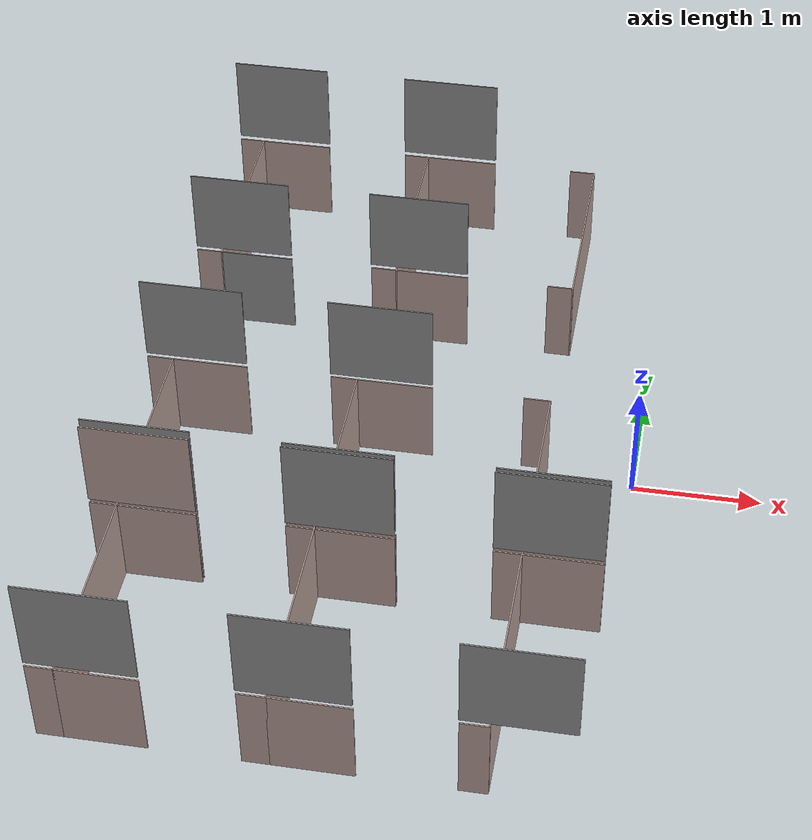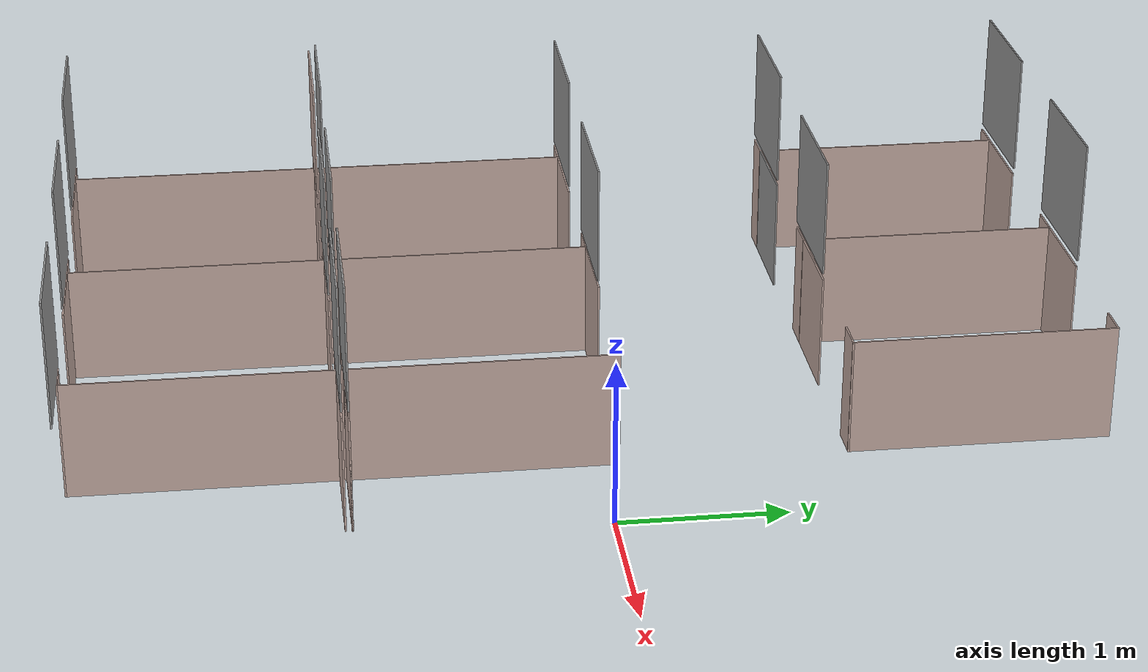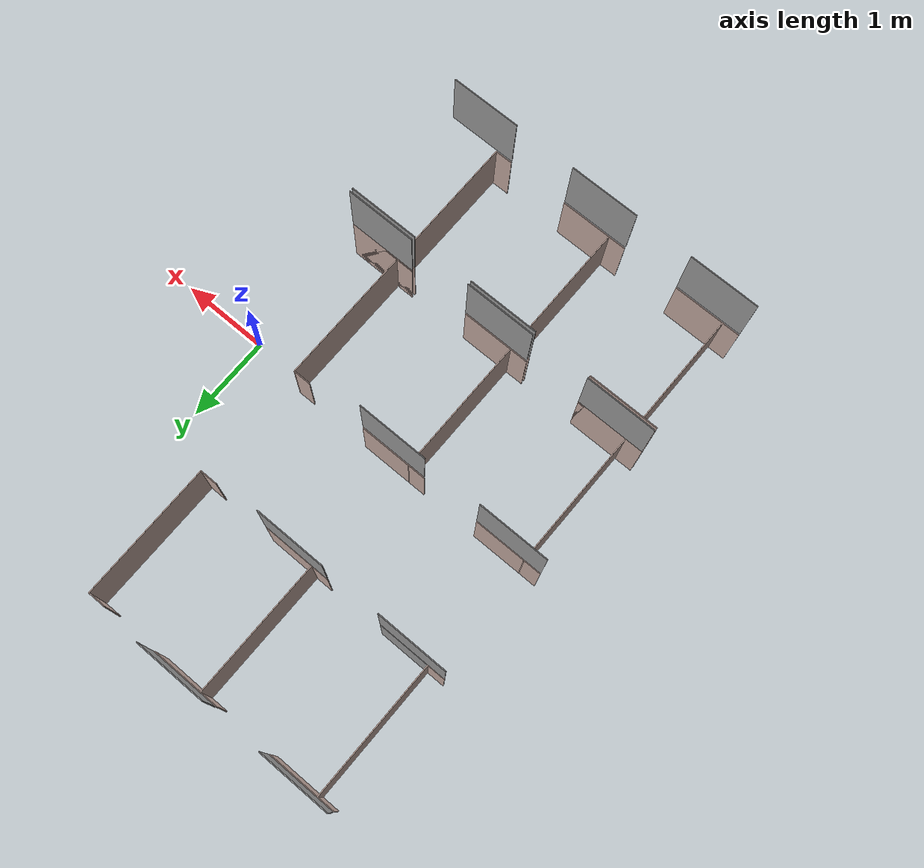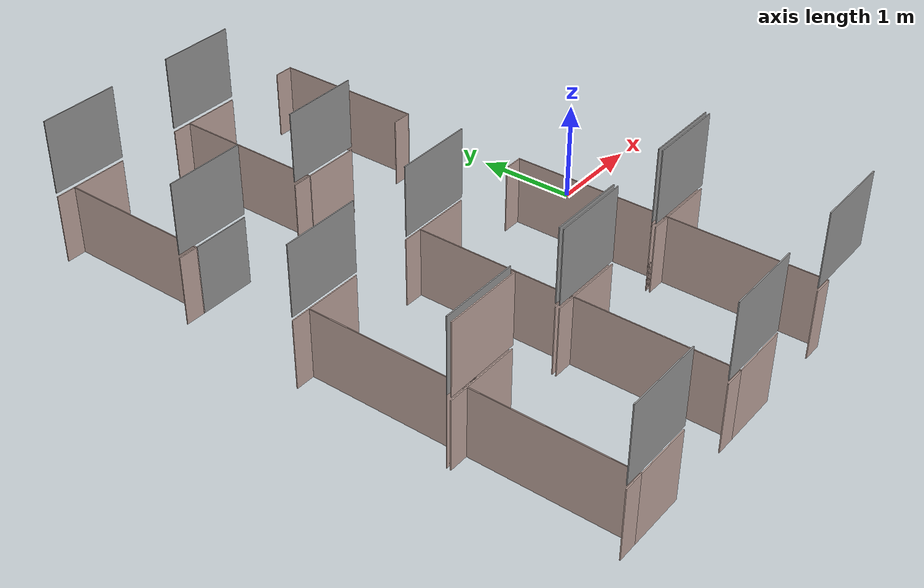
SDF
<sdf version="1.6">
 <model name="change_class3">
  <pose>-0.18406 0.008075 0 0 -0 0</pose>
  <link name="Wall_138">
   <collision name="Wall_138_Collision">
    <geometry><box><size>0.593 0.01 0.715</size></box></geometry>
    <pose>0 0 0.3575 0 -0 0</pose>
   </collision>
   <visual name="Wall_138_Visual">
    <pose>0 0 0.3575 0 -0 0</pose>
    <geometry><box><size>0.593 0.01 0.715</size></box></geometry>
    <material>
     <script><uri>file://media/materials/scripts/gazebo.material</uri><name>Gazebo/Grey</name></script>
     <ambient>0.760784 0.662745 0.627451 1</ambient>
    </material>
   </visual>
   <pose>-3.10444 3.04292 0 0 -0 0</pose>
  </link>
  <link name="Wall_140">
   <collision name="Wall_140_Collision">
    <geometry><box><size>0.598 0.01 0.715</size></box></geometry>
    <pose>0 0 0.3575 0 -0 0</pose>
   </collision>
   <visual name="Wall_140_Visual">
    <pose>0 0 0.3575 0 -0 0</pose>
    <geometry><box><size>0.598 0.01 0.715</size></box></geometry>
    <material>
     <script><uri>file://media/materials/scripts/gazebo.material</uri><name>Gazebo/Grey</name></script>
     <ambient>0.760784 0.662745 0.627451 1</ambient>
    </material>
   </visual>
   <pose>-1.63894 3.04292 0 0 -0 0</pose>
  </link>
  <link name="Wall_155">
   <collision name="Wall_155_Collision">
    <geometry><box><size>0.798 0.01 0.715</size></box></geometry>
    <pose>0 0 0.3575 0 -0 0</pose>
   </collision>
   <visual name="Wall_155_Visual">
    <pose>0 0 0.3575 0 -0 0</pose>
    <geometry><box><size>0.798 0.01 0.715</size></box></geometry>
    <material>
     <script><uri>file://media/materials/scripts/gazebo.material</uri><name>Gazebo/Grey</name></script>
     <ambient>1 1 1 1</ambient>
    </material>
   </visual>
   <pose>-3.20194 1.46893 0.751 0 -0 0</pose>
  </link>
  <link name="Wall_156">
   <collision name="Wall_156_Collision">
    <geometry><box><size>0.798 0.01 0.715</size></box></geometry>
    <pose>0 0 0.3575 0 -0 0</pose>
   </collision>
   <visual name="Wall_156_Visual">
    <pose>0 0 0.3575 0 -0 0</pose>
    <geometry><box><size>0.798 0.01 0.715</size></box></geometry>
    <material>
     <script><uri>file://media/materials/scripts/gazebo.material</uri><name>Gazebo/Grey</name></script>
     <ambient>1 1 1 1</ambient>
    </material>
   </visual>
   <pose>-1.74294 1.46893 0.751 0 -0 0</pose>
  </link>
  <link name="Wall_16">
   <collision name="Wall_16_Collision">
    <geometry><box><size>0.598 0.01 0.715</size></box></geometry>
    <pose>0 0 0.3575 0 -0 0</pose>
   </collision>
   <visual name="Wall_16_Visual">
    <pose>0 0 0.3575 0 -0 0</pose>
    <geometry><box><size>0.598 0.01 0.715</size></box></geometry>
    <material>
     <script><uri>file://media/materials/scripts/gazebo.material</uri><name>Gazebo/Grey</name></script>
     <ambient>0.760784 0.662745 0.627451 1</ambient>
    </material>
   </visual>
   <pose>-3.16194 0.108925 0 0 -0 0</pose>
  </link>
  <link name="Wall_160">
   <collision name="Wall_160_Collision">
    <geometry><box><size>0.798 0.01 0.715</size></box></geometry>
    <pose>0 0 0.3575 0 -0 0</pose>
   </collision>
   <visual name="Wall_160_Visual">
    <pose>0 0 0.3575 0 -0 0</pose>
    <geometry><box><size>0.798 0.01 0.715</size></box></geometry>
    <material>
     <script><uri>file://media/materials/scripts/gazebo.material</uri><name>Gazebo/Grey</name></script>
     <ambient>1 1 1 1</ambient>
    </material>
   </visual>
   <pose>-3.26194 0.108925 0.751 0 -0 0</pose>
  </link>
  <link name="Wall_161">
   <collision name="Wall_161_Collision">
    <geometry><box><size>0.797 0.01 0.715</size></box></geometry>
    <pose>0 0 0.3575 0 -0 0</pose>
   </collision>
   <visual name="Wall_161_Visual">
    <pose>0 0 0.3575 0 -0 0</pose>
    <geometry><box><size>0.797 0.01 0.715</size></box></geometry>
    <material>
     <script><uri>file://media/materials/scripts/gazebo.material</uri><name>Gazebo/Grey</name></script>
     <ambient>1 1 1 1</ambient>
    </material>
   </visual>
   <pose>-1.80244 0.104925 0.751 0 -0 0</pose>
  </link>
  <link name="Wall_164">
   <collision name="Wall_164_Collision">
    <geometry><box><size>0.798 0.01 0.751</size></box></geometry>
    <pose>0 0 0.3755 0 -0 0</pose>
   </collision>
   <visual name="Wall_164_Visual">
    <pose>0 0 0.3755 0 -0 0</pose>
    <geometry><box><size>0.798 0.01 0.751</size></box></geometry>
    <material>
     <script><uri>file://media/materials/scripts/gazebo.material</uri><name>Gazebo/Grey</name></script>
     <ambient>1 1 1 1</ambient>
    </material>
   </visual>
   <pose>-3.26194 -1.47107 0.751 0 -0 0</pose>
  </link>
  <link name="Wall_165">
   <collision name="Wall_165_Collision">
    <geometry><box><size>0.798 0.01 0.751</size></box></geometry>
    <pose>0 0 0.3755 0 -0 0</pose>
   </collision>
   <visual name="Wall_165_Visual">
    <pose>0 0 0.3755 0 -0 0</pose>
    <geometry><box><size>0.798 0.01 0.751</size></box></geometry>
    <material>
     <script><uri>file://media/materials/scripts/gazebo.material</uri><name>Gazebo/Grey</name></script>
     <ambient>1 1 1 1</ambient>
    </material>
   </visual>
   <pose>-1.80594 -1.47107 0.751 0 -0 0</pose>
  </link>
  <link name="Wall_166">
   <collision name="Wall_166_Collision">
    <geometry><box><size>0.798 0.01 0.751</size></box></geometry>
    <pose>0 0 0.3755 0 -0 0</pose>
   </collision>
   <visual name="Wall_166_Visual">
    <pose>0 0 0.3755 0 -0 0</pose>
    <geometry><box><size>0.798 0.01 0.751</size></box></geometry>
    <material>
     <script><uri>file://media/materials/scripts/gazebo.material</uri><name>Gazebo/Grey</name></script>
     <ambient>1 1 1 1</ambient>
    </material>
   </visual>
   <pose>-0.30194 -1.47107 0.751 0 -0 0</pose>
  </link>
  <link name="Wall_175">
   <collision name="Wall_175_Collision">
    <geometry><box><size>0.798 0.01 0.751</size></box></geometry>
    <pose>0 0 0.3755 0 -0 0</pose>
   </collision>
   <visual name="Wall_175_Visual">
    <pose>0 0 0.3755 0 -0 0</pose>
    <geometry><box><size>0.798 0.01 0.751</size></box></geometry>
    <material>
     <script><uri>file://media/materials/scripts/gazebo.material</uri><name>Gazebo/Grey</name></script>
     <ambient>1 1 1 1</ambient>
    </material>
   </visual>
   <pose>-0.30194 -1.47107 0.751 0 -0 0</pose>
  </link>
  <link name="Wall_176">
   <collision name="Wall_176_Collision">
    <geometry><box><size>0.798 0.01 0.751</size></box></geometry>
    <pose>0 0 0.3755 0 -0 0</pose>
   </collision>
   <visual name="Wall_176_Visual">
    <pose>0 0 0.3755 0 -0 0</pose>
    <geometry><box><size>0.798 0.01 0.751</size></box></geometry>
    <material>
     <script><uri>file://media/materials/scripts/gazebo.material</uri><name>Gazebo/Grey</name></script>
     <ambient>1 1 1 1</ambient>
    </material>
   </visual>
   <pose>-0.30194 -1.51107 0.751 0 -0 0</pose>
  </link>
  <link name="Wall_177">
   <collision name="Wall_177_Collision">
    <geometry><box><size>0.798 0.01 0.751</size></box></geometry>
    <pose>0 0 0.3755 0 -0 0</pose>
   </collision>
   <visual name="Wall_177_Visual">
    <pose>0 0 0.3755 0 -0 0</pose>
    <geometry><box><size>0.798 0.01 0.751</size></box></geometry>
    <material>
     <script><uri>file://media/materials/scripts/gazebo.material</uri><name>Gazebo/Grey</name></script>
     <ambient>1 1 1 1</ambient>
    </material>
   </visual>
   <pose>-1.80594 -1.51107 0.751 0 -0 0</pose>
  </link>
  <link name="Wall_178">
   <collision name="Wall_178_Collision">
    <geometry><box><size>0.798 0.01 0.751</size></box></geometry>
    <pose>0 0 0.3755 0 -0 0</pose>
   </collision>
   <visual name="Wall_178_Visual">
    <pose>0 0 0.3755 0 -0 0</pose>
    <geometry><box><size>0.798 0.01 0.751</size></box></geometry>
    <material>
     <script><uri>file://media/materials/scripts/gazebo.material</uri><name>Gazebo/Grey</name></script>
     <ambient>1 1 1 1</ambient>
    </material>
   </visual>
   <pose>-3.26194 -1.47107 0.751 0 -0 0</pose>
  </link>
  <link name="Wall_179">
   <collision name="Wall_179_Collision">
    <geometry><box><size>0.798 0.01 0.715</size></box></geometry>
    <pose>0 0 0.3575 0 -0 0</pose>
   </collision>
   <visual name="Wall_179_Visual">
    <pose>0 0 0.3575 0 -0 0</pose>
    <geometry><box><size>0.798 0.01 0.715</size></box></geometry>
    <material>
     <script><uri>file://media/materials/scripts/gazebo.material</uri><name>Gazebo/Grey</name></script>
     <ambient>0.760784 0.662745 0.627451 1</ambient>
    </material>
   </visual>
   <pose>-3.26194 -1.51307 0.751 0 -0 0</pose>
  </link>
  <link name="Wall_18">
   <collision name="Wall_18_Collision">
    <geometry><box><size>0.598 0.01 0.715</size></box></geometry>
    <pose>0 0 0.3575 0 -0 0</pose>
   </collision>
   <visual name="Wall_18_Visual">
    <pose>0 0 0.3575 0 -0 0</pose>
    <geometry><box><size>0.598 0.01 0.715</size></box></geometry>
    <material>
     <script><uri>file://media/materials/scripts/gazebo.material</uri><name>Gazebo/Grey</name></script>
     <ambient>0.760784 0.662745 0.627451 1</ambient>
    </material>
   </visual>
   <pose>-1.70194 0.108925 0 0 -0 0</pose>
  </link>
  <link name="Wall_180">
   <collision name="Wall_180_Collision">
    <geometry><box><size>0.798 0.01 0.751</size></box></geometry>
    <pose>0 0 0.3755 0 -0 0</pose>
   </collision>
   <visual name="Wall_180_Visual">
    <pose>0 0 0.3755 0 -0 0</pose>
    <geometry><box><size>0.798 0.01 0.751</size></box></geometry>
    <material>
     <script><uri>file://media/materials/scripts/gazebo.material</uri><name>Gazebo/Grey</name></script>
     <ambient>1 1 1 1</ambient>
    </material>
   </visual>
   <pose>-3.26194 -3.07508 0.751 0 -0 0</pose>
  </link>
  <link name="Wall_181">
   <collision name="Wall_181_Collision">
    <geometry><box><size>0.798 0.01 0.751</size></box></geometry>
    <pose>0 0 0.3755 0 -0 0</pose>
   </collision>
   <visual name="Wall_181_Visual">
    <pose>0 0 0.3755 0 -0 0</pose>
    <geometry><box><size>0.798 0.01 0.751</size></box></geometry>
    <material>
     <script><uri>file://media/materials/scripts/gazebo.material</uri><name>Gazebo/Grey</name></script>
     <ambient>1 1 1 1</ambient>
    </material>
   </visual>
   <pose>-1.80594 -3.07508 0.751 0 -0 0</pose>
  </link>
  <link name="Wall_182">
   <collision name="Wall_182_Collision">
    <geometry><box><size>0.798 0.01 0.751</size></box></geometry>
    <pose>0 0 0.3755 0 -0 0</pose>
   </collision>
   <visual name="Wall_182_Visual">
    <pose>0 0 0.3755 0 -0 0</pose>
    <geometry><box><size>0.798 0.01 0.751</size></box></geometry>
    <material>
     <script><uri>file://media/materials/scripts/gazebo.material</uri><name>Gazebo/Grey</name></script>
     <ambient>1 1 1 1</ambient>
    </material>
   </visual>
   <pose>-0.30194 -3.07508 0.751 0 -0 0</pose>
  </link>
  <link name="Wall_185">
   <collision name="Wall_185_Collision">
    <geometry><box><size>0.798 0.01 0.751</size></box></geometry>
    <pose>0 0 0.3755 0 -0 0</pose>
   </collision>
   <visual name="Wall_185_Visual">
    <pose>0 0 0.3755 0 -0 0</pose>
    <geometry><box><size>0.798 0.01 0.751</size></box></geometry>
    <material>
     <script><uri>file://media/materials/scripts/gazebo.material</uri><name>Gazebo/Grey</name></script>
     <ambient>1 1 1 1</ambient>
    </material>
   </visual>
   <pose>-3.20194 3.04893 0.751 0 -0 0</pose>
  </link>
  <link name="Wall_186">
   <collision name="Wall_186_Collision">
    <geometry><box><size>0.798 0.01 0.751</size></box></geometry>
    <pose>0 0 0.3755 0 -0 0</pose>
   </collision>
   <visual name="Wall_186_Visual">
    <pose>0 0 0.3755 0 -0 0</pose>
    <geometry><box><size>0.798 0.01 0.751</size></box></geometry>
    <material>
     <script><uri>file://media/materials/scripts/gazebo.material</uri><name>Gazebo/Grey</name></script>
     <ambient>1 1 1 1</ambient>
    </material>
   </visual>
   <pose>-1.73894 3.04893 0.751 0 -0 0</pose>
  </link>
  <link name="Wall_193">
   <collision name="Wall_193_Collision">
    <geometry><box><size>1.584 0.01 0.715</size></box></geometry>
    <pose>0 0 0.3575 0 -0 0</pose>
   </collision>
   <visual name="Wall_193_Visual">
    <pose>0 0 0.3575 0 -0 0</pose>
    <geometry><box><size>1.584 0.01 0.715</size></box></geometry>
    <material>
     <script><uri>file://media/materials/scripts/gazebo.material</uri><name>Gazebo/Grey</name></script>
     <ambient>0.760784 0.662745 0.627451 1</ambient>
    </material>
   </visual>
   <pose>-1.93294 2.25592 0 0 0 -1.5708</pose>
  </link>
  <link name="Wall_195">
   <collision name="Wall_195_Collision">
    <geometry><box><size>1.584 0.01 0.715</size></box></geometry>
    <pose>0 0 0.3575 0 -0 0</pose>
   </collision>
   <visual name="Wall_195_Visual">
    <pose>0 0 0.3575 0 -0 0</pose>
    <geometry><box><size>1.584 0.01 0.715</size></box></geometry>
    <material>
     <script><uri>file://media/materials/scripts/gazebo.material</uri><name>Gazebo/Grey</name></script>
     <ambient>0.760784 0.662745 0.627451 1</ambient>
    </material>
   </visual>
   <pose>-0.48194 2.25592 0 0 0 -1.5708</pose>
  </link>
  <link name="Wall_203">
   <collision name="Wall_203_Collision">
    <geometry><box><size>3.194 0.01 0.715</size></box></geometry>
    <pose>0 0 0.3575 0 -0 0</pose>
   </collision>
   <visual name="Wall_203_Visual">
    <pose>0 0 0.3575 0 -0 0</pose>
    <geometry><box><size>3.194 0.01 0.715</size></box></geometry>
    <material>
     <script><uri>file://media/materials/scripts/gazebo.material</uri><name>Gazebo/Grey</name></script>
     <ambient>0.760784 0.662745 0.627451 1</ambient>
    </material>
   </visual>
   <pose>-3.45594 -1.48307 0 0 0 -1.5708</pose>
  </link>
  <link name="Wall_205">
   <collision name="Wall_205_Collision">
    <geometry><box><size>3.194 0.01 0.715</size></box></geometry>
    <pose>0 0 0.3575 0 -0 0</pose>
   </collision>
   <visual name="Wall_205_Visual">
    <pose>0 0 0.3575 0 -0 0</pose>
    <geometry><box><size>3.194 0.01 0.715</size></box></geometry>
    <material>
     <script><uri>file://media/materials/scripts/gazebo.material</uri><name>Gazebo/Grey</name></script>
     <ambient>0.760784 0.662745 0.627451 1</ambient>
    </material>
   </visual>
   <pose>-1.99594 -1.48307 0 0 0 -1.5708</pose>
  </link>
  <link name="Wall_207">
   <collision name="Wall_207_Collision">
    <geometry><box><size>3.194 0.01 0.715</size></box></geometry>
    <pose>0 0 0.3575 0 -0 0</pose>
   </collision>
   <visual name="Wall_207_Visual">
    <pose>0 0 0.3575 0 -0 0</pose>
    <geometry><box><size>3.194 0.01 0.715</size></box></geometry>
    <material>
     <script><uri>file://media/materials/scripts/gazebo.material</uri><name>Gazebo/Grey</name></script>
     <ambient>0.760784 0.662745 0.627451 1</ambient>
    </material>
   </visual>
   <pose>-0.49394 -1.48307 0 0 0 -1.5708</pose>
  </link>
  <link name="Wall_214">
   <collision name="Wall_214_Collision">
    <geometry><box><size>0.01 0.01 0.715</size></box></geometry>
    <pose>0 0 0.3575 0 -0 0</pose>
   </collision>
   <visual name="Wall_214_Visual">
    <pose>0 0 0.3575 0 -0 0</pose>
    <geometry><box><size>0.01 0.01 0.715</size></box></geometry>
    <material>
     <script><uri>file://media/materials/scripts/gazebo.material</uri><name>Gazebo/Grey</name></script>
     <ambient>0.760784 0.662745 0.627451 1</ambient>
    </material>
   </visual>
   <pose>-3.39594 1.46893 0 0 -0 0</pose>
  </link>
  <link name="Wall_216">
   <collision name="Wall_216_Collision">
    <geometry><box><size>0.01 0.01 0.715</size></box></geometry>
    <pose>0 0 0.3575 0 -0 0</pose>
   </collision>
   <visual name="Wall_216_Visual">
    <pose>0 0 0.3575 0 -0 0</pose>
    <geometry><box><size>0.01 0.01 0.715</size></box></geometry>
    <material>
     <script><uri>file://media/materials/scripts/gazebo.material</uri><name>Gazebo/Grey</name></script>
     <ambient>0.760784 0.662745 0.627451 1</ambient>
    </material>
   </visual>
   <pose>-3.39594 1.46893 0 0 -0 0</pose>
  </link>
  <link name="Wall_218">
   <collision name="Wall_218_Collision">
    <geometry><box><size>0.01 0.01 0.715</size></box></geometry>
    <pose>0 0 0.3575 0 -0 0</pose>
   </collision>
   <visual name="Wall_218_Visual">
    <pose>0 0 0.3575 0 -0 0</pose>
    <geometry><box><size>0.01 0.01 0.715</size></box></geometry>
    <material>
     <script><uri>file://media/materials/scripts/gazebo.material</uri><name>Gazebo/Grey</name></script>
     <ambient>1 1 1 1</ambient>
    </material>
   </visual>
   <pose>-3.39594 3.04292 0 0 -0 0</pose>
  </link>
  <link name="Wall_222">
   <collision name="Wall_222_Collision">
    <geometry><box><size>1.584 0.01 0.715</size></box></geometry>
    <pose>0 0 0.3575 0 -0 0</pose>
   </collision>
   <visual name="Wall_222_Visual">
    <pose>0 0 0.3575 0 -0 0</pose>
    <geometry><box><size>1.584 0.01 0.715</size></box></geometry>
    <material>
     <script><uri>file://media/materials/scripts/gazebo.material</uri><name>Gazebo/Grey</name></script>
     <ambient>0.760784 0.662745 0.627451 1</ambient>
    </material>
   </visual>
   <pose>-3.39594 2.25592 0 0 -0 1.5708</pose>
  </link>
  <link name="Wall_224">
   <collision name="Wall_224_Collision">
    <geometry><box><size>0.21 0.01 0.715</size></box></geometry>
    <pose>0 0 0.3575 0 -0 0</pose>
   </collision>
   <visual name="Wall_224_Visual">
    <pose>0 0 0.3575 0 -0 0</pose>
    <geometry><box><size>0.21 0.01 0.715</size></box></geometry>
    <material>
     <script><uri>file://media/materials/scripts/gazebo.material</uri><name>Gazebo/Grey</name></script>
     <ambient>0.760784 0.662745 0.627451 1</ambient>
    </material>
   </visual>
   <pose>-3.49594 3.04292 0 0 -0 0</pose>
  </link>
  <link name="Wall_226">
   <collision name="Wall_226_Collision">
    <geometry><box><size>0.21 0.01 0.715</size></box></geometry>
    <pose>0 0 0.3575 0 -0 0</pose>
   </collision>
   <visual name="Wall_226_Visual">
    <pose>0 0 0.3575 0 -0 0</pose>
    <geometry><box><size>0.21 0.01 0.715</size></box></geometry>
    <material>
     <script><uri>file://media/materials/scripts/gazebo.material</uri><name>Gazebo/Grey</name></script>
     <ambient>0.760784 0.662745 0.627451 1</ambient>
    </material>
   </visual>
   <pose>-3.49594 1.46893 0 0 -0 0</pose>
  </link>
  <link name="Wall_228">
   <collision name="Wall_228_Collision">
    <geometry><box><size>0.21 0.01 0.715</size></box></geometry>
    <pose>0 0 0.3575 0 -0 0</pose>
   </collision>
   <visual name="Wall_228_Visual">
    <pose>0 0 0.3575 0 -0 0</pose>
    <geometry><box><size>0.21 0.01 0.715</size></box></geometry>
    <material>
     <script><uri>file://media/materials/scripts/gazebo.material</uri><name>Gazebo/Grey</name></script>
     <ambient>0.760784 0.662745 0.627451 1</ambient>
    </material>
   </visual>
   <pose>-2.03294 3.04292 0 0 -0 0</pose>
  </link>
  <link name="Wall_230">
   <collision name="Wall_230_Collision">
    <geometry><box><size>0.21 0.01 0.715</size></box></geometry>
    <pose>0 0 0.3575 0 -0 0</pose>
   </collision>
   <visual name="Wall_230_Visual">
    <pose>0 0 0.3575 0 -0 0</pose>
    <geometry><box><size>0.21 0.01 0.715</size></box></geometry>
    <material>
     <script><uri>file://media/materials/scripts/gazebo.material</uri><name>Gazebo/Grey</name></script>
     <ambient>0.760784 0.662745 0.627451 1</ambient>
    </material>
   </visual>
   <pose>-2.03294 1.46893 0 0 -0 0</pose>
  </link>
  <link name="Wall_232">
   <collision name="Wall_232_Collision">
    <geometry><box><size>0.21 0.01 0.715</size></box></geometry>
    <pose>0 0 0.3575 0 -0 0</pose>
   </collision>
   <visual name="Wall_232_Visual">
    <pose>0 0 0.3575 0 -0 0</pose>
    <geometry><box><size>0.21 0.01 0.715</size></box></geometry>
    <material>
     <script><uri>file://media/materials/scripts/gazebo.material</uri><name>Gazebo/Grey</name></script>
     <ambient>0.760784 0.662745 0.627451 1</ambient>
    </material>
   </visual>
   <pose>-0.58194 1.46893 0 0 -0 0</pose>
  </link>
  <link name="Wall_234">
   <collision name="Wall_234_Collision">
    <geometry><box><size>0.21 0.01 0.715</size></box></geometry>
    <pose>0 0 0.3575 0 -0 0</pose>
   </collision>
   <visual name="Wall_234_Visual">
    <pose>0 0 0.3575 0 -0 0</pose>
    <geometry><box><size>0.21 0.01 0.715</size></box></geometry>
    <material>
     <script><uri>file://media/materials/scripts/gazebo.material</uri><name>Gazebo/Grey</name></script>
     <ambient>0.760784 0.662745 0.627451 1</ambient>
    </material>
   </visual>
   <pose>-0.58194 3.04292 0 0 -0 0</pose>
  </link>
  <link name="Wall_244">
   <collision name="Wall_244_Collision">
    <geometry><box><size>0.21 0.01 0.715</size></box></geometry>
    <pose>0 0 0.3575 0 -0 0</pose>
   </collision>
   <visual name="Wall_244_Visual">
    <pose>0 0 0.3575 0 -0 0</pose>
    <geometry><box><size>0.21 0.01 0.715</size></box></geometry>
    <material>
     <script><uri>file://media/materials/scripts/gazebo.material</uri><name>Gazebo/Grey</name></script>
     <ambient>0.760784 0.662745 0.627451 1</ambient>
    </material>
   </visual>
   <pose>-3.55594 0.108925 0 0 -0 0</pose>
  </link>
  <link name="Wall_246">
   <collision name="Wall_246_Collision">
    <geometry><box><size>0.21 0.01 0.715</size></box></geometry>
    <pose>0 0 0.3575 0 -0 0</pose>
   </collision>
   <visual name="Wall_246_Visual">
    <pose>0 0 0.3575 0 -0 0</pose>
    <geometry><box><size>0.21 0.01 0.715</size></box></geometry>
    <material>
     <script><uri>file://media/materials/scripts/gazebo.material</uri><name>Gazebo/Grey</name></script>
     <ambient>0.760784 0.662745 0.627451 1</ambient>
    </material>
   </visual>
   <pose>-3.55594 -3.07508 0 0 -0 0</pose>
  </link>
  <link name="Wall_248">
   <collision name="Wall_248_Collision">
    <geometry><box><size>0.21 0.01 0.715</size></box></geometry>
    <pose>0 0 0.3575 0 -0 0</pose>
   </collision>
   <visual name="Wall_248_Visual">
    <pose>0 0 0.3575 0 -0 0</pose>
    <geometry><box><size>0.21 0.01 0.715</size></box></geometry>
    <material>
     <script><uri>file://media/materials/scripts/gazebo.material</uri><name>Gazebo/Grey</name></script>
     <ambient>0.760784 0.662745 0.627451 1</ambient>
    </material>
   </visual>
   <pose>-2.09594 0.108925 0 0 -0 0</pose>
  </link>
  <link name="Wall_250">
   <collision name="Wall_250_Collision">
    <geometry><box><size>0.21 0.01 0.715</size></box></geometry>
    <pose>0 0 0.3575 0 -0 0</pose>
   </collision>
   <visual name="Wall_250_Visual">
    <pose>0 0 0.3575 0 -0 0</pose>
    <geometry><box><size>0.21 0.01 0.715</size></box></geometry>
    <material>
     <script><uri>file://media/materials/scripts/gazebo.material</uri><name>Gazebo/Grey</name></script>
     <ambient>0.760784 0.662745 0.627451 1</ambient>
    </material>
   </visual>
   <pose>-2.09594 -3.07508 0 0 -0 0</pose>
  </link>
  <link name="Wall_26">
   <collision name="Wall_26_Collision">
    <geometry><box><size>0.798 0.01 0.751</size></box></geometry>
    <pose>0 0 0.3755 0 -0 0</pose>
   </collision>
   <visual name="Wall_26_Visual">
    <pose>0 0 0.3755 0 -0 0</pose>
    <geometry><box><size>0.798 0.01 0.751</size></box></geometry>
    <material>
     <script><uri>file://media/materials/scripts/gazebo.material</uri><name>Gazebo/Grey</name></script>
     <ambient>0.760784 0.662745 0.627451 1</ambient>
    </material>
   </visual>
   <pose>-3.26194 -1.47107 0 0 -0 0</pose>
  </link>
  <link name="Wall_28">
   <collision name="Wall_28_Collision">
    <geometry><box><size>0.798 0.01 0.715</size></box></geometry>
    <pose>0 0 0.3575 0 -0 0</pose>
   </collision>
   <visual name="Wall_28_Visual">
    <pose>0 0 0.3575 0 -0 0</pose>
    <geometry><box><size>0.798 0.01 0.715</size></box></geometry>
    <material>
     <script><uri>file://media/materials/scripts/gazebo.material</uri><name>Gazebo/Grey</name></script>
     <ambient>0.760784 0.662745 0.627451 1</ambient>
    </material>
   </visual>
   <pose>-1.80594 -1.47107 0 0 -0 0</pose>
  </link>
  <link name="Wall_287">
   <collision name="Wall_287_Collision">
    <geometry><box><size>0.21 0.01 0.715</size></box></geometry>
    <pose>0 0 0.3575 0 -0 0</pose>
   </collision>
   <visual name="Wall_287_Visual">
    <pose>0 0 0.3575 0 -0 0</pose>
    <geometry><box><size>0.21 0.01 0.715</size></box></geometry>
    <material>
     <script><uri>file://media/materials/scripts/gazebo.material</uri><name>Gazebo/Grey</name></script>
     <ambient>0.760784 0.662745 0.627451 1</ambient>
    </material>
   </visual>
   <pose>-0.59394 0.108925 0 0 -0 0</pose>
  </link>
  <link name="Wall_289">
   <collision name="Wall_289_Collision">
    <geometry><box><size>0.21 0.01 0.715</size></box></geometry>
    <pose>0 0 0.3575 0 -0 0</pose>
   </collision>
   <visual name="Wall_289_Visual">
    <pose>0 0 0.3575 0 -0 0</pose>
    <geometry><box><size>0.21 0.01 0.715</size></box></geometry>
    <material>
     <script><uri>file://media/materials/scripts/gazebo.material</uri><name>Gazebo/Grey</name></script>
     <ambient>0.760784 0.662745 0.627451 1</ambient>
    </material>
   </visual>
   <pose>-0.59394 -3.07508 0 0 -0 0</pose>
  </link>
  <link name="Wall_30">
   <collision name="Wall_30_Collision">
    <geometry><box><size>0.798 0.01 0.751</size></box></geometry>
    <pose>0 0 0.3755 0 -0 0</pose>
   </collision>
   <visual name="Wall_30_Visual">
    <pose>0 0 0.3755 0 -0 0</pose>
    <geometry><box><size>0.798 0.01 0.751</size></box></geometry>
    <material>
     <script><uri>file://media/materials/scripts/gazebo.material</uri><name>Gazebo/Grey</name></script>
     <ambient>0.760784 0.662745 0.627451 1</ambient>
    </material>
   </visual>
   <pose>-0.30194 -1.47107 0 0 -0 0</pose>
  </link>
  <link name="Wall_53">
   <collision name="Wall_53_Collision">
    <geometry><box><size>0.798 0.01 0.715</size></box></geometry>
    <pose>0 0 0.3575 0 -0 0</pose>
   </collision>
   <visual name="Wall_53_Visual">
    <pose>0 0 0.3575 0 -0 0</pose>
    <geometry><box><size>0.798 0.01 0.715</size></box></geometry>
    <material>
     <script><uri>file://media/materials/scripts/gazebo.material</uri><name>Gazebo/Grey</name></script>
     <ambient>0.760784 0.662745 0.627451 1</ambient>
    </material>
   </visual>
   <pose>-0.30194 -1.47107 0 0 -0 0</pose>
  </link>
  <link name="Wall_55">
   <collision name="Wall_55_Collision">
    <geometry><box><size>0.798 0.01 0.715</size></box></geometry>
    <pose>0 0 0.3575 0 -0 0</pose>
   </collision>
   <visual name="Wall_55_Visual">
    <pose>0 0 0.3575 0 -0 0</pose>
    <geometry><box><size>0.798 0.01 0.715</size></box></geometry>
    <material>
     <script><uri>file://media/materials/scripts/gazebo.material</uri><name>Gazebo/Grey</name></script>
     <ambient>0.760784 0.662745 0.627451 1</ambient>
    </material>
   </visual>
   <pose>-0.30194 -1.51107 0 0 -0 0</pose>
  </link>
  <link name="Wall_57">
   <collision name="Wall_57_Collision">
    <geometry><box><size>0.798 0.01 0.715</size></box></geometry>
    <pose>0 0 0.3575 0 -0 0</pose>
   </collision>
   <visual name="Wall_57_Visual">
    <pose>0 0 0.3575 0 -0 0</pose>
    <geometry><box><size>0.798 0.01 0.715</size></box></geometry>
    <material>
     <script><uri>file://media/materials/scripts/gazebo.material</uri><name>Gazebo/Grey</name></script>
     <ambient>0.760784 0.662745 0.627451 1</ambient>
    </material>
   </visual>
   <pose>-1.80594 -1.51107 0 0 -0 0</pose>
  </link>
  <link name="Wall_59">
   <collision name="Wall_59_Collision">
    <geometry><box><size>0.798 0.01 0.715</size></box></geometry>
    <pose>0 0 0.3575 0 -0 0</pose>
   </collision>
   <visual name="Wall_59_Visual">
    <pose>0 0 0.3575 0 -0 0</pose>
    <geometry><box><size>0.798 0.01 0.715</size></box></geometry>
    <material>
     <script><uri>file://media/materials/scripts/gazebo.material</uri><name>Gazebo/Grey</name></script>
     <ambient>0.760784 0.662745 0.627451 1</ambient>
    </material>
   </visual>
   <pose>-3.26194 -1.47107 0 0 -0 0</pose>
  </link>
  <link name="Wall_6">
   <collision name="Wall_6_Collision">
    <geometry><box><size>0.598 0.01 0.715</size></box></geometry>
    <pose>0 0 0.3575 0 -0 0</pose>
   </collision>
   <visual name="Wall_6_Visual">
    <pose>0 0 0.3575 0 -0 0</pose>
    <geometry><box><size>0.598 0.01 0.715</size></box></geometry>
    <material>
     <script><uri>file://media/materials/scripts/gazebo.material</uri><name>Gazebo/Grey</name></script>
     <ambient>0.494118 0.494118 0.494118 1</ambient>
    </material>
   </visual>
   <pose>-3.10194 1.46893 0 0 -0 0</pose>
  </link>
  <link name="Wall_61">
   <collision name="Wall_61_Collision">
    <geometry><box><size>0.798 0.01 0.715</size></box></geometry>
    <pose>0 0 0.3575 0 -0 0</pose>
   </collision>
   <visual name="Wall_61_Visual">
    <pose>0 0 0.3575 0 -0 0</pose>
    <geometry><box><size>0.798 0.01 0.715</size></box></geometry>
    <material>
     <script><uri>file://media/materials/scripts/gazebo.material</uri><name>Gazebo/Grey</name></script>
     <ambient>0.760784 0.662745 0.627451 1</ambient>
    </material>
   </visual>
   <pose>-3.26194 -1.51107 0 0 -0 0</pose>
  </link>
  <link name="Wall_65">
   <collision name="Wall_65_Collision">
    <geometry><box><size>0.598 0.01 0.715</size></box></geometry>
    <pose>0 0 0.3575 0 -0 0</pose>
   </collision>
   <visual name="Wall_65_Visual">
    <pose>0 0 0.3575 0 -0 0</pose>
    <geometry><box><size>0.598 0.01 0.715</size></box></geometry>
    <material>
     <script><uri>file://media/materials/scripts/gazebo.material</uri><name>Gazebo/Grey</name></script>
     <ambient>0.760784 0.662745 0.627451 1</ambient>
    </material>
   </visual>
   <pose>-3.16194 -3.07508 0 0 -0 0</pose>
  </link>
  <link name="Wall_67">
   <collision name="Wall_67_Collision">
    <geometry><box><size>0.598 0.01 0.715</size></box></geometry>
    <pose>0 0 0.3575 0 -0 0</pose>
   </collision>
   <visual name="Wall_67_Visual">
    <pose>0 0 0.3575 0 -0 0</pose>
    <geometry><box><size>0.598 0.01 0.715</size></box></geometry>
    <material>
     <script><uri>file://media/materials/scripts/gazebo.material</uri><name>Gazebo/Grey</name></script>
     <ambient>0.760784 0.662745 0.627451 1</ambient>
    </material>
   </visual>
   <pose>-1.70194 -3.07508 0 0 -0 0</pose>
  </link>
  <link name="Wall_8">
   <collision name="Wall_8_Collision">
    <geometry><box><size>0.598 0.01 0.715</size></box></geometry>
    <pose>0 0 0.3575 0 -0 0</pose>
   </collision>
   <visual name="Wall_8_Visual">
    <pose>0 0 0.3575 0 -0 0</pose>
    <geometry><box><size>0.598 0.01 0.715</size></box></geometry>
    <material>
     <script><uri>file://media/materials/scripts/gazebo.material</uri><name>Gazebo/Grey</name></script>
     <ambient>0.760784 0.662745 0.627451 1</ambient>
    </material>
   </visual>
   <pose>-1.63894 1.46893 0 0 -0 0</pose>
  </link>
  <static>1</static>
 </model>
</sdf>
